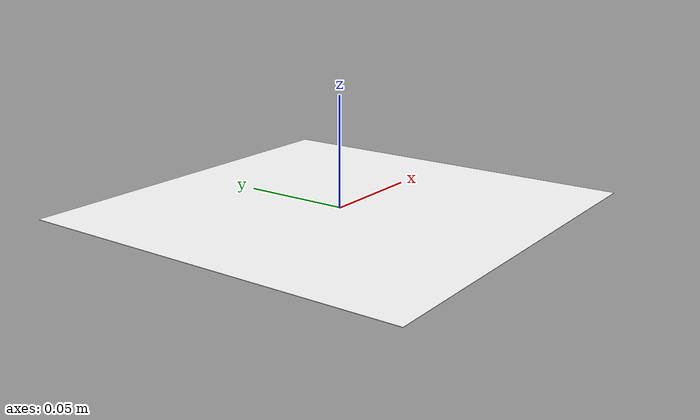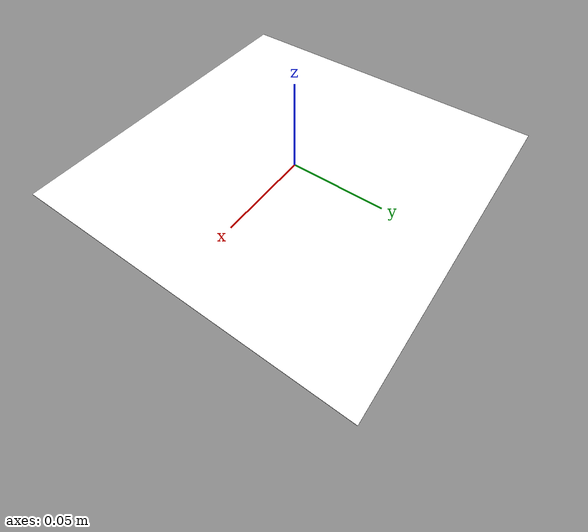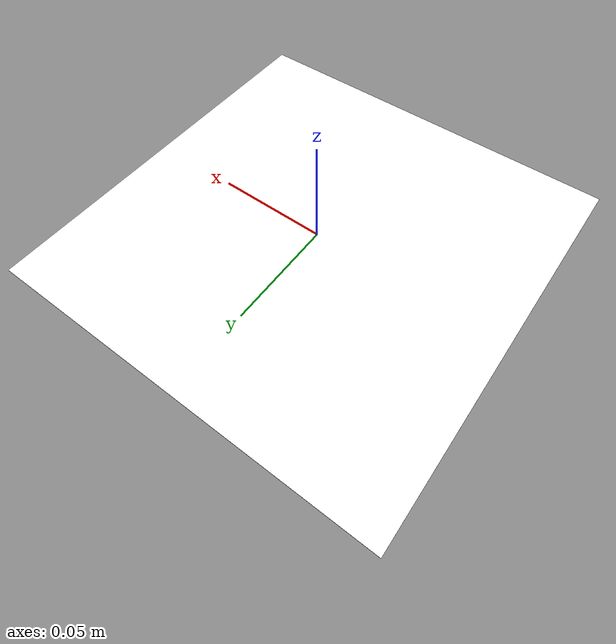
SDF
<?xml version="1.0" encoding="UTF-8"?>
<sdf version='1.9'>
  <model name='azd_arucotag_dronehome_4x4_0_018'>
    <static>true</static>
    <pose>0 0 0.001 0 0 0</pose>
    <link name='base'>
      <visual name='base_visual'>
        <geometry>
          <plane>
            <normal>0 0 1</normal>
            <size>0.18 0.18</size>
          </plane>
        </geometry>
        <material>
          <diffuse>1 1 1 1</diffuse>
          <specular>0.4 0.4 0.4 1</specular>
          <pbr>
            <metal>
              <albedo_map>model://arucotag/stock/4x4_1000-0 (0.18).png</albedo_map>
            </metal>
          </pbr>
        </material>
      </visual>
    </link>
  </model>
</sdf>
